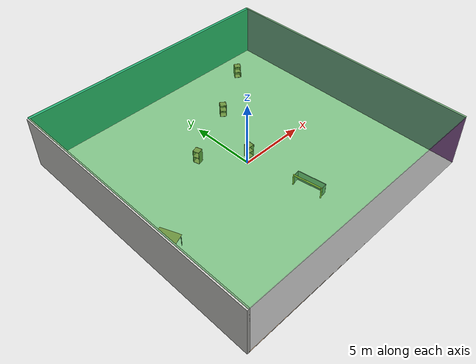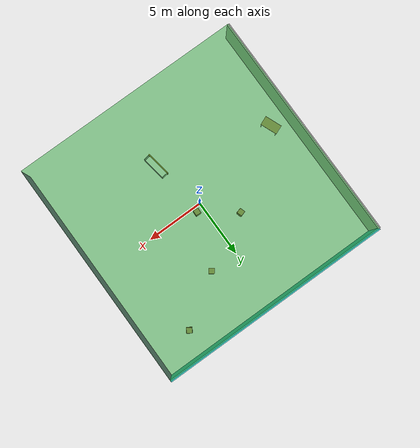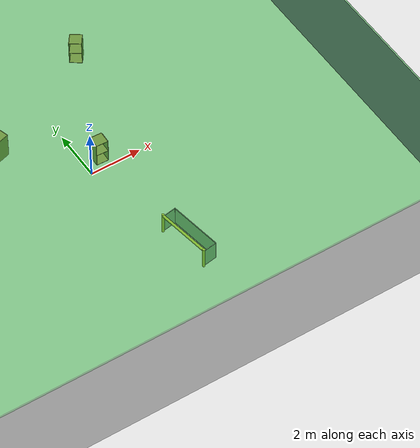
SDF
<sdf version="1.4">
 <world name="default">
  <physics type="ode">
   <max_step_size>0.001</max_step_size>
   <real_time_factor>1</real_time_factor>
   <real_time_update_rate>1000</real_time_update_rate>
   <gravity>0 0 -9.8</gravity>
  </physics>
  <scene><ambient>0.4 0.4 0.4 1</ambient><background>0.7 0.7 0.7 1</background><shadows>1</shadows></scene>
  <model name="Surrounding">
   <static>1</static>
   <link name="Ceiling">
    <collision name="Ceiling_Collision"><geometry><box><size>20 20 0.1</size></box></geometry></collision>
    <visual name="Ceiling_Visual">
     <geometry><box><size>20 20 0.1</size></box></geometry>
     <material>
      <script><uri>file://media/materials/scripts/gazebo.material</uri><name>Gazebo/GreenTransparent</name></script>
     </material>
    </visual>
    <pose>0 0 4.05 0 0 0</pose>
   </link>
   <link name="Wall_South">
    <collision name="Wall_South_Collision">
     <geometry><box><size>20 0 4</size></box></geometry>
     <pose>0 0 2 0 -0 0</pose>
    </collision>
    <visual name="Wall_South_Visual">
     <pose>0 0 2 0 -0 0</pose>
     <geometry><box><size>20 0 4</size></box></geometry>
     <material>
      <script><uri>file://media/materials/scripts/gazebo.material</uri><name>Gazebo/GreyTransparent</name></script>
     </material>
    </visual>
    <velocity_decay><linear>0</linear><angular>0</angular></velocity_decay>
    <pose>0 -10 0 0 -0 0</pose>
   </link>
   <link name="Wall_East">
    <collision name="Wall_21_Collision">
     <geometry><box><size>20 0 4</size></box></geometry>
     <pose>0 0 2 0 -0 0</pose>
    </collision>
    <visual name="Wall_21_Visual">
     <pose>0 0 2 0 -0 0</pose>
     <geometry><box><size>20 0 4</size></box></geometry>
     <material>
      <script><uri>file://media/materials/scripts/gazebo.material</uri><name>Gazebo/Purple</name></script>
     </material>
    </visual>
    <velocity_decay><linear>0</linear><angular>0</angular></velocity_decay>
    <pose>10 0 0 0 -0 1.5708</pose>
   </link>
   <link name="Wall_North">
    <collision name="Wall_22_Collision">
     <geometry><box><size>20 0.2 4</size></box></geometry>
     <pose>0 0 2 0 -0 0</pose>
    </collision>
    <visual name="Wall_22_Visual">
     <pose>0 0 2 0 -0 0</pose>
     <geometry><box><size>20 0.2 4</size></box></geometry>
     <material>
      <script><uri>file://media/materials/scripts/gazebo.material</uri><name>Gazebo/TurquoiseGlow</name></script>
     </material>
    </visual>
    <velocity_decay><linear>0</linear><angular>0</angular></velocity_decay>
    <pose>0 10 0 0 -0 0</pose>
   </link>
   <link name="Wall_West">
    <collision name="Wall_23_Collision">
     <geometry><box><size>20 0.2 4</size></box></geometry>
     <pose>0 0 2 0 -0 0</pose>
    </collision>
    <visual name="Wall_23_Visual">
     <pose>0 0 2 0 -0 0</pose>
     <geometry><box><size>20 0.2 4</size></box></geometry>
     <material>
      <script><uri>file://media/materials/scripts/gazebo.material</uri><name>Gazebo/CeilingTiled</name></script>
     </material>
    </visual>
    <velocity_decay><linear>0</linear><angular>0</angular></velocity_decay>
    <pose>-10 0 0 0 0 -1.5708</pose>
   </link>
   <link name="Ground_link">
    <collision name="collision">
     <pose>0 0 .05 0 -0 0</pose>
     <geometry><box><size>20 20 0.1</size></box></geometry>
    </collision>
    <visual name="visual">
     <pose>0 0 .05 0 -0 0</pose>
     <geometry><box><size>20 20 0.1</size></box></geometry>
     <material>
      <script>
       <uri>file://media/materials/scripts/gazebo.material</uri>
       <name>Gazebo/OrangeTransparent</name>
      </script>
     </material>
    </visual>
   </link>
   <static>1</static>
  </model>
  <spherical_coordinates>
   <surface_model>EARTH_WGS84</surface_model>
   <latitude_deg>0</latitude_deg>
   <longitude_deg>0</longitude_deg>
   <elevation>0</elevation>
   <heading_deg>0</heading_deg>
  </spherical_coordinates>
  <light name="lightball_0" type="diffuse">
   <diffuse>0.8 0.8 0.8 1</diffuse>
   <specular>0.2 0.2 0.2 1</specular>
   <attenuation>
    <range>100</range>
    <constant>0.7</constant>
    <linear>0.01</linear>
    <quadratic>0.001</quadratic>
   </attenuation>
   <direction>-0.5 0.1 -0.9</direction>
   <pose>9.78096434869 -5.82755110031 2.46706868016 0 0 0</pose>
  </light>
  <light name="lightball_1" type="diffuse">
   <diffuse>0.8 0.8 0.8 1</diffuse>
   <specular>0.2 0.2 0.2 1</specular>
   <attenuation>
    <range>100</range>
    <constant>0.7</constant>
    <linear>0.01</linear>
    <quadratic>0.001</quadratic>
   </attenuation>
   <direction>-0.5 0.1 -0.9</direction>
   <pose>1.17833100679 -0.35852302565 2.00898438494 0 0 0</pose>
  </light>
  <light name="lightball_2" type="diffuse">
   <diffuse>0.8 0.8 0.8 1</diffuse>
   <specular>0.2 0.2 0.2 1</specular>
   <attenuation>
    <range>100</range>
    <constant>0.7</constant>
    <linear>0.01</linear>
    <quadratic>0.001</quadratic>
   </attenuation>
   <direction>-0.5 0.1 -0.9</direction>
   <pose>9.19338398325 9.91867810543 0.697921611718 0 0 0</pose>
  </light>
  <light name="lightball_3" type="diffuse">
   <diffuse>0.8 0.8 0.8 1</diffuse>
   <specular>0.2 0.2 0.2 1</specular>
   <attenuation>
    <range>100</range>
    <constant>0.7</constant>
    <linear>0.01</linear>
    <quadratic>0.001</quadratic>
   </attenuation>
   <direction>-0.5 0.1 -0.9</direction>
   <pose>8.26084891094 9.16120138772 3.1570238257 0 0 0</pose>
  </light>
  <light name="lightball_4" type="diffuse">
   <diffuse>0.8 0.8 0.8 1</diffuse>
   <specular>0.2 0.2 0.2 1</specular>
   <attenuation>
    <range>100</range>
    <constant>0.7</constant>
    <linear>0.01</linear>
    <quadratic>0.001</quadratic>
   </attenuation>
   <direction>-0.5 0.1 -0.9</direction>
   <pose>1.24148827709 1.08234275434 1.86521832425 0 0 0</pose>
  </light>
  <light name="lightball_5" type="diffuse">
   <diffuse>0.8 0.8 0.8 1</diffuse>
   <specular>0.2 0.2 0.2 1</specular>
   <attenuation>
    <range>100</range>
    <constant>0.7</constant>
    <linear>0.01</linear>
    <quadratic>0.001</quadratic>
   </attenuation>
   <direction>-0.5 0.1 -0.9</direction>
   <pose>-4.5767518661 4.56839241679 1.09649347536 0 0 0</pose>
  </light>
  <light name="lightball_6" type="diffuse">
   <diffuse>0.8 0.8 0.8 1</diffuse>
   <specular>0.2 0.2 0.2 1</specular>
   <attenuation>
    <range>100</range>
    <constant>0.7</constant>
    <linear>0.01</linear>
    <quadratic>0.001</quadratic>
   </attenuation>
   <direction>-0.5 0.1 -0.9</direction>
   <pose>1.57269107593 -3.2589781054 1.16148460502 0 0 0</pose>
  </light>
  <light name="lightball_7" type="diffuse">
   <diffuse>0.8 0.8 0.8 1</diffuse>
   <specular>0.2 0.2 0.2 1</specular>
   <attenuation>
    <range>100</range>
    <constant>0.7</constant>
    <linear>0.01</linear>
    <quadratic>0.001</quadratic>
   </attenuation>
   <direction>-0.5 0.1 -0.9</direction>
   <pose>-2.46026962763 -7.87413973903 0.935619083762 0 0 0</pose>
  </light>
  <include><uri>model://table</uri><pose>-8.45935405356 -1.7585540041 0 0 0 1.95342992427</pose></include>
  <include><uri>model://cabinet</uri><pose>-2.26621010156 2.54553968576 0 0 0 0.284058064977</pose></include>
  <include>
   <uri>model://robocup_3Dsim_goal</uri>
   <pose>0.859429037732 -4.62796920401 0 0 0 0.158275644361</pose>
  </include>
  <include><uri>model://cabinet</uri><pose>0.609154429154 0.440119716519 0 0 0 1.52561831739</pose></include>
  <include><uri>model://cabinet</uri><pose>2.45078483018 4.99299977073 0 0 0 0.940781663479</pose></include>
  <include><uri>model://cabinet</uri><pose>6.70827393462 7.79448560429 0 0 0 1.00167128581</pose></include>
 </world>
</sdf>

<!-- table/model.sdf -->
<sdf version="1.5">
  <model name="table">
    <static>true</static>
    <link name="link">
      <collision name="surface">
        <pose>0 0 1.0 0 0 0</pose>
        <geometry>
          <box>
            <size>1.5 0.8 0.03</size>
          </box>
        </geometry>
        <surface>
          <friction>
            <ode>
              <mu>0.6</mu>
              <mu2>0.6</mu2>
            </ode>
          </friction>
        </surface>
      </collision>
      <visual name="visual1">
        <pose>0 0 1.0 0 0 0</pose>
        <geometry>
          <box>
            <size>1.5 0.8 0.03</size>
          </box>
        </geometry>
        <material>
          <script>
            <uri>model://media/materials/scripts/gazebo.material</uri>
            <name>Gazebo/Wood</name>
          </script>
        </material>
      </visual>
      <collision name="front_left_leg">
        <pose>0.68 0.38 0.5 0 0 0</pose>
        <geometry>
          <cylinder>
            <radius>0.02</radius>
            <length>1.0</length>
          </cylinder>
        </geometry>
      </collision>
      <visual name="front_left_leg">
        <pose>0.68 0.38 0.5 0 0 0</pose>
        <geometry>
          <cylinder>
            <radius>0.02</radius>
            <length>1.0</length>
          </cylinder>
        </geometry>
        <material>
          <script>
            <uri>model://media/materials/scripts/gazebo.material</uri>
            <name>Gazebo/Grey</name>
          </script>
        </material>
      </visual>
      <collision name="front_right_leg">
        <pose>0.68 -0.38 0.5 0 0 0</pose>
        <geometry>
          <cylinder>
            <radius>0.02</radius>
            <length>1.0</length>
          </cylinder>
        </geometry>
      </collision>
      <visual name="front_right_leg">
        <pose>0.68 -0.38 0.5 0 0 0</pose>
        <geometry>
          <cylinder>
            <radius>0.02</radius>
            <length>1.0</length>
          </cylinder>
        </geometry>
        <material>
          <script>
            <uri>model://media/materials/scripts/gazebo.material</uri>
            <name>Gazebo/Grey</name>
          </script>
        </material>
      </visual>
      <collision name="back_right_leg">
        <pose>-0.68 -0.38 0.5 0 0 0</pose>
        <geometry>
          <cylinder>
            <radius>0.02</radius>
            <length>1.0</length>
          </cylinder>
        </geometry>
      </collision>
      <visual name="back_right_leg">
        <pose>-0.68 -0.38 0.5 0 0 0</pose>
        <geometry>
          <cylinder>
            <radius>0.02</radius>
            <length>1.0</length>
          </cylinder>
        </geometry>
        <material>
          <script>
            <uri>model://media/materials/scripts/gazebo.material</uri>
            <name>Gazebo/Grey</name>
          </script>
        </material>
      </visual>
      <collision name="back_left_leg">
        <pose>-0.68 0.38 0.5 0 0 0</pose>
        <geometry>
          <cylinder>
            <radius>0.02</radius>
            <length>1.0</length>
          </cylinder>
        </geometry>
      </collision>
      <visual name="back_left_leg">
        <pose>-0.68 0.38 0.5 0 0 0</pose>
        <geometry>
          <cylinder>
            <radius>0.02</radius>
            <length>1.0</length>
          </cylinder>
        </geometry>
        <material>
          <script>
            <uri>model://media/materials/scripts/gazebo.material</uri>
            <name>Gazebo/Grey</name>
          </script>
        </material>
      </visual>
    </link>
  </model>
</sdf>

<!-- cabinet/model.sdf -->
<sdf version="1.5">
  <model name="cabinet">
    <static>true</static>
    <link name="cabinet_bottom_plate">
      <inertial>
        <pose>0 0 -1 0 0 0</pose>
        <inertia>
          <ixx>2.050000</ixx>
          <ixy>0</ixy>
          <ixz>0</ixz>
          <iyy>2.050000</iyy>
          <iyz>0</iyz>
          <izz>2.050000</izz>
        </inertia>
        <mass>25.000000</mass>
      </inertial>
      <collision name="cabinet_bottom_plate_geom">
        <pose>0 0 0.010000 0 0 0</pose>
        <geometry>
          <box>
            <size>0.450000 0.450000 0.020000</size>
          </box>
        </geometry>
      </collision>
      <visual name="cabinet_bottom_plate_geom_visual">
        <pose>0 0 0.010000 0 0 0</pose>
        <geometry>
          <box>
            <size>0.450000 0.450000 0.020000</size>
          </box>
        </geometry>
        <material>
          <script>
            <uri>model://media/materials/scripts/gazebo.material</uri>
            <name>Gazebo/Wood</name>
          </script>
        </material>
      </visual>
      <collision name="cabinet_bottom_plate_geom_cabinet_back_plate">
        <pose>0.235000 0 0.510000 0 0 0</pose>
        <geometry>
          <box>
            <size>0.020000 0.450000 1.020000</size>
          </box>
        </geometry>
      </collision>
      <visual name="cabinet_bottom_plate_geom_cabinet_back_plate_visual">
        <pose>0.235000 0 0.510000 0 0 0</pose>
        <geometry>
          <box>
            <size>0.020000 0.450000 1.020000</size>
          </box>
        </geometry>
        <material>
          <script>
            <uri>model://media/materials/scripts/gazebo.material</uri>
            <name>Gazebo/Wood</name>
          </script>
        </material>
      </visual>
      <collision name="cabinet_bottom_plate_geom_cabinet_left_plate">
        <pose>0 0.235000 0.510000 0 0 0</pose>
        <geometry>
          <box>
            <size>0.450000 0.020000 1.020000</size>
          </box>
        </geometry>
      </collision>
      <visual name="cabinet_bottom_plate_geom_cabinet_left_plate_visual">
        <pose>0 0.235000 0.510000 0 0 0</pose>
        <geometry>
          <box>
            <size>0.450000 0.020000 1.020000</size>
          </box>
        </geometry>
        <material>
          <script>
            <uri>model://media/materials/scripts/gazebo.material</uri>
            <name>Gazebo/Wood</name>
          </script>
        </material>
      </visual>
      <collision name="cabinet_bottom_plate_geom_cabinet_middle_plate">
        <pose>0 0 0.510000 0 0 0</pose>
        <geometry>
          <box>
            <size>0.450000 0.450000 0.020000</size>
          </box>
        </geometry>
      </collision>
      <visual name="cabinet_bottom_plate_geom_cabinet_middle_plate_visual">
        <pose>0 0 0.510000 0 0 0</pose>
        <geometry>
          <box>
            <size>0.450000 0.450000 0.020000</size>
          </box>
        </geometry>
        <material>
          <script>
            <uri>model://media/materials/scripts/gazebo.material</uri>
            <name>Gazebo/Wood</name>
          </script>
        </material>
      </visual>
      <collision name="cabinet_bottom_plate_geom_cabinet_right_plate">
        <pose>0 -0.235000 0.510000 0 0 0</pose>
        <geometry>
          <box>
            <size>0.450000 0.020000 1.020000</size>
          </box>
        </geometry>
      </collision>
      <visual name="cabinet_bottom_plate_geom_cabinet_right_plate_visual">
        <pose>0 -0.235000 0.510000 0 0 0</pose>
        <geometry>
          <box>
            <size>0.450000 0.020000 1.020000</size>
          </box>
        </geometry>
        <material>
          <script>
            <uri>model://media/materials/scripts/gazebo.material</uri>
            <name>Gazebo/Wood</name>
          </script>
        </material>
      </visual>
      <collision name="cabinet_bottom_plate_geom_cabinet_top_plate">
        <pose>0 0 1.010000 0 0 0</pose>
        <geometry>
          <box>
            <size>0.450000 0.450000 0.020000</size>
          </box>
        </geometry>
      </collision>
      <visual name="cabinet_bottom_plate_geom_cabinet_top_plate_visual">
        <pose>0 0 1.010000 0 0 0</pose>
        <geometry>
          <box>
            <size>0.450000 0.450000 0.020000</size>
          </box>
        </geometry>
        <material>
          <script>
            <uri>model://media/materials/scripts/gazebo.material</uri>
            <name>Gazebo/Wood</name>
          </script>
        </material>
      </visual>
    </link>
  </model>
</sdf>

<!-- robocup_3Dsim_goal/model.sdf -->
<sdf version="1.5">
  <model name="robocup_3d_goal">
    <static>true</static>
    <link name="left_post">
      <pose>0 1.05 0.45 0 0 0</pose>
      <collision name="collision">
        <geometry>
          <cylinder>
            <radius>0.05</radius>
            <length>0.9</length>
          </cylinder>
        </geometry>
      </collision>
      <visual name="visual">
        <geometry>
          <cylinder>
            <radius>0.05</radius>
            <length>0.9</length>
          </cylinder>
        </geometry>
        <material>
          <script>
            <uri>file://media/materials/scripts/gazebo.material</uri>
            <name>Gazebo/ZincYellow</name>
          </script>
        </material>
      </visual>
    </link>
    <link name="left_support_horiz_lower">
      <pose>0.30 1.05 0.01 0 0 0</pose>
      <collision name="collision">
        <geometry>
          <box>
            <size>0.50 0.02 0.02</size>
          </box>
        </geometry>
      </collision>
      <visual name="visual">
        <geometry>
          <box>
            <size>0.50 0.02 0.02</size>
          </box>
        </geometry>
        <material>
          <script>
            <uri>file://media/materials/scripts/gazebo.material</uri>
            <name>Gazebo/White</name>
          </script>
        </material>
      </visual>
    </link>
    <link name="left_support_horiz_upper">
      <pose>0.30 1.05 0.79 0 0 0</pose>
      <collision name="collision">
        <geometry>
          <box>
            <size>0.50 0.02 0.02</size>
          </box>
        </geometry>
      </collision>
      <visual name="visual">
        <geometry>
          <box>
            <size>0.50 0.02 0.02</size>
          </box>
        </geometry>
        <material>
          <script>
            <uri>file://media/materials/scripts/gazebo.material</uri>
            <name>Gazebo/White</name>
          </script>
        </material>
      </visual>
    </link>
    <link name="left_support_vertical">
      <pose>0.56 1.05 0.4 0 1.5708 0</pose>
      <collision name="collision">
        <geometry>
          <box>
            <size>0.80 0.02 0.02</size>
          </box>
        </geometry>
      </collision>
      <visual name="visual">
        <geometry>
          <box>
            <size>0.80 0.02 0.02</size>
          </box>
        </geometry>
        <material>
          <script>
            <uri>file://media/materials/scripts/gazebo.material</uri>
            <name>Gazebo/White</name>
          </script>
        </material>
      </visual>
    </link>
    <link name="right_support_horiz_lower">
      <pose>0.30 -1.05 0.01 0 0 0</pose>
      <collision name="collision">
        <geometry>
          <box>
            <size>0.50 0.02 0.02</size>
          </box>
        </geometry>
      </collision>
      <visual name="visual">
        <geometry>
          <box>
            <size>0.50 0.02 0.02</size>
          </box>
        </geometry>
        <material>
          <script>
            <uri>file://media/materials/scripts/gazebo.material</uri>
            <name>Gazebo/White</name>
          </script>
        </material>
      </visual>
    </link>
    <link name="right_support_horiz_upper">
      <pose>0.30 -1.05 0.79 0 0 0</pose>
      <collision name="collision">
        <geometry>
          <box>
            <size>0.50 0.02 0.02</size>
          </box>
        </geometry>
      </collision>
      <visual name="visual">
        <geometry>
          <box>
            <size>0.50 0.02 0.02</size>
          </box>
        </geometry>
        <material>
          <script>
            <uri>file://media/materials/scripts/gazebo.material</uri>
            <name>Gazebo/White</name>
          </script>
        </material>
      </visual>
    </link>
    <link name="right_support_vertical">
      <pose>0.56 -1.05 0.4 0 1.5708 0</pose>
      <collision name="collision">
        <geometry>
          <box>
            <size>0.80 0.02 0.02</size>
          </box>
        </geometry>
      </collision>
      <visual name="visual">
        <geometry>
          <box>
            <size>0.80 0.02 0.02</size>
          </box>
        </geometry>
        <material>
          <script>
            <uri>file://media/materials/scripts/gazebo.material</uri>
            <name>Gazebo/White</name>
          </script>
        </material>
      </visual>
    </link>
    <link name="center_support_horiz_lower">
      <pose>0.56 0 0.01 0 1.5708 0</pose>
      <collision name="collision">
        <geometry>
          <box>
            <size>0.02 2.08 0.02</size>
          </box>
        </geometry>
      </collision>
      <visual name="visual">
        <geometry>
          <box>
            <size>0.02 2.08 0.02</size>
          </box>
        </geometry>
        <material>
          <script>
            <uri>file://media/materials/scripts/gazebo.material</uri>
            <name>Gazebo/White</name>
          </script>
        </material>
      </visual>
    </link>
    <link name="center_support_horiz_upper">
      <pose>0.56 0 0.79 0 1.5708 0</pose>
      <collision name="collision">
        <geometry>
          <box>
            <size>0.02 2.08 0.02</size>
          </box>
        </geometry>
      </collision>
      <visual name="visual">
        <geometry>
          <box>
            <size>0.02 2.08 0.02</size>
          </box>
        </geometry>
        <material>
          <script>
            <uri>file://media/materials/scripts/gazebo.material</uri>
            <name>Gazebo/White</name>
          </script>
        </material>
      </visual>
    </link>
    <link name="right_post">
      <pose>0 -1.05 0.45 0 0 0</pose>
      <collision name="collision">
        <geometry>
          <cylinder>
            <radius>0.05</radius>
            <length>0.9</length>
          </cylinder>
        </geometry>
      </collision>
      <visual name="visual">
        <geometry>
          <cylinder>
            <radius>0.05</radius>
            <length>0.9</length>
          </cylinder>
        </geometry>
        <material>
          <script>
            <uri>file://media/materials/scripts/gazebo.material</uri>
            <name>Gazebo/ZincYellow</name>
          </script>
        </material>
      </visual>
    </link>
    <link name="crossbar">
      <pose>0 0 0.85 1.57 1.57 0</pose>
      <collision name="collision">
        <geometry>
          <cylinder>
            <radius>0.05</radius>
            <length>2.0</length>
          </cylinder>
        </geometry>
      </collision>
      <visual name="visual">
        <geometry>
          <cylinder>
            <radius>0.05</radius>
            <length>2.0</length>
          </cylinder>
        </geometry>
        <material>
          <script>
            <uri>file://media/materials/scripts/gazebo.material</uri>
            <name>Gazebo/ZincYellow</name>
          </script>
        </material>
      </visual>
    </link>
    <link name="center_net">
      <pose>0.56 0 0.40 0 0 0</pose>
      <collision name="collision">
        <geometry>
          <box>
            <size>0.01 2.1 0.80</size>
          </box>
        </geometry>
      </collision>
      <visual name="visual">
        <geometry>
          <box>
            <size>0.01 2.1 0.80</size>
          </box>
        </geometry>
        <material>
          <script>
            <uri>model://../model_source/models/robocup09_spl_field/materials/scripts/</uri>
            <uri>model://../model_source/models/robocup09_spl_field/materials/textures/</uri>
            <name>RoboCup/Net</name>
          </script>
        </material>
      </visual>
    </link>
    <link name="left_net">
      <pose>0.30 1.05 0.40 0 0 0</pose>
      <collision name="collision">
        <geometry>
          <box>
            <size>0.50 0.01 0.76</size>
          </box>
        </geometry>
      </collision>
      <visual name="visual">
        <geometry>
          <box>
            <size>0.50 0.01 0.76</size>
          </box>
        </geometry>
        <material>
          <script>
            <uri>model://../model_source/models/robocup09_spl_field/materials/scripts/</uri>
            <uri>model://../model_source/models/robocup09_spl_field/materials/textures/</uri>
            <name>RoboCup/Net</name>
          </script>
        </material>
      </visual>
    </link>
    <link name="right_net">
      <pose>0.30 -1.05 0.40 0 0 0</pose>
      <collision name="collision">
        <geometry>
          <box>
            <size>0.50 0.01 0.76</size>
          </box>
        </geometry>
      </collision>
      <visual name="visual">
        <geometry>
          <box>
            <size>0.50 0.01 0.76</size>
          </box>
        </geometry>
        <material>
          <script>
            <uri>model://../model_source/models/robocup09_spl_field/materials/scripts/</uri>
            <uri>model://../model_source/models/robocup09_spl_field/materials/textures/</uri>
            <name>RoboCup/Net</name>
          </script>
        </material>
      </visual>
    </link>
  </model>
</sdf>
